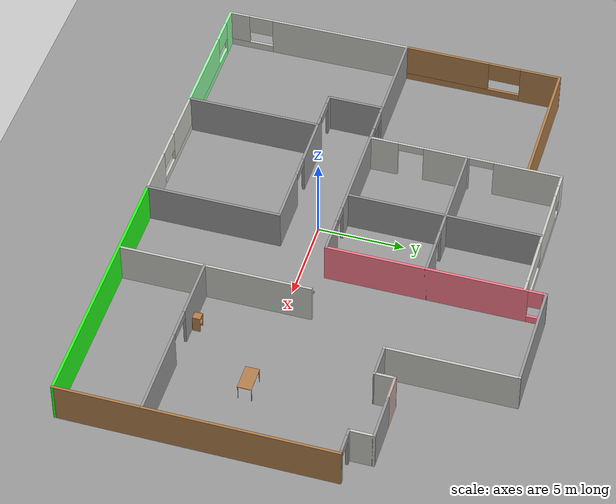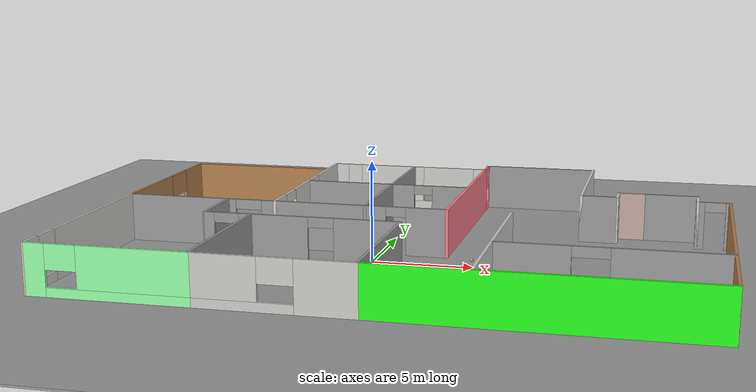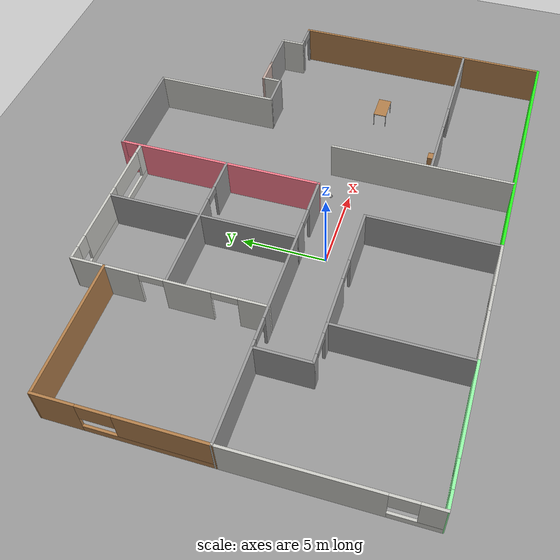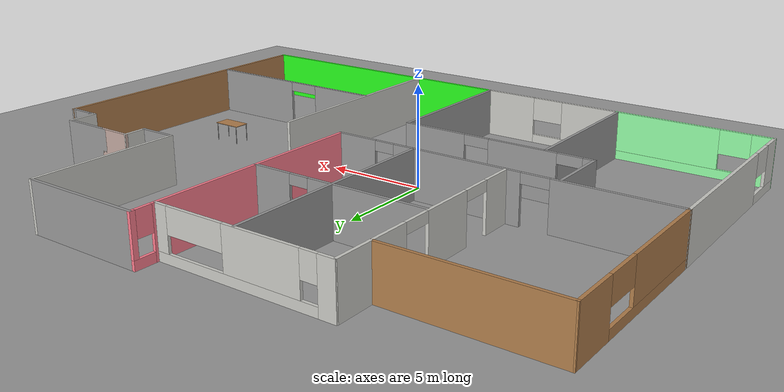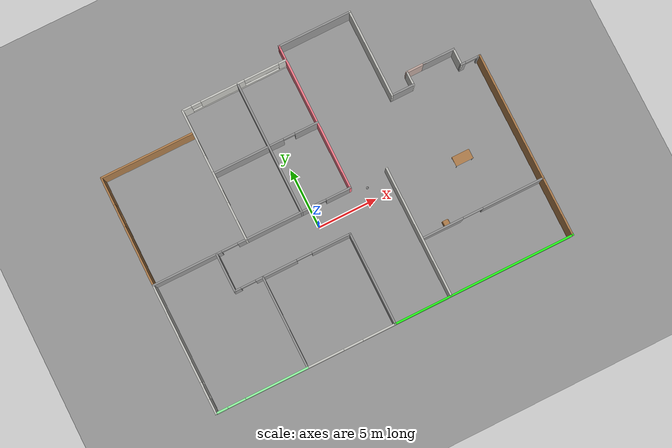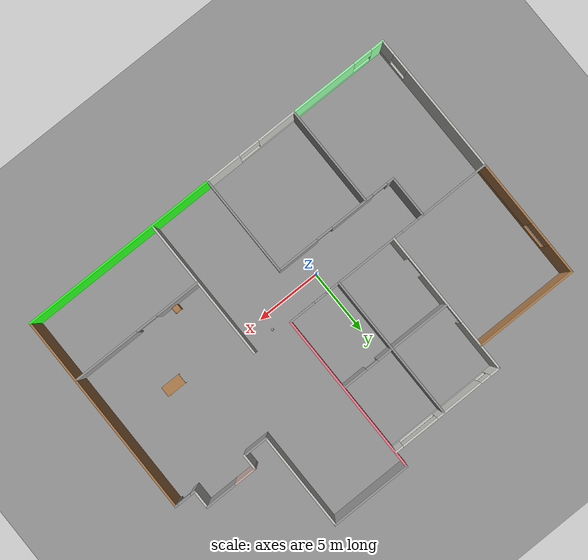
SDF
<sdf version="1.6">
 <world name="default">
  <model name="ground_plane">
   <static>1</static>
   <link name="link">
    <collision name="collision">
     <geometry><plane><normal>0 0 1</normal><size>100 100</size></plane></geometry>
     <surface>
      <contact><collide_bitmask>65535</collide_bitmask></contact>
      <friction><ode><mu>100</mu><mu2>50</mu2></ode></friction>
     </surface>
    </collision>
    <visual name="visual">
     <cast_shadows>0</cast_shadows>
     <geometry><plane><normal>0 0 1</normal><size>100 100</size></plane></geometry>
     <material>
      <script><uri>file://media/materials/scripts/gazebo.material</uri><name>Gazebo/Grey</name></script>
     </material>
    </visual>
   </link>
  </model>
  <model name="ground_plane_0">
   <static>1</static>
   <link name="link">
    <collision name="collision">
     <geometry><plane><normal>0 0 1</normal><size>100 100</size></plane></geometry>
     <surface>
      <contact><collide_bitmask>65535</collide_bitmask></contact>
      <friction><ode><mu>100</mu><mu2>50</mu2></ode></friction>
     </surface>
    </collision>
    <visual name="visual">
     <cast_shadows>0</cast_shadows>
     <geometry><plane><normal>0 0 1</normal><size>100 100</size></plane></geometry>
     <material>
      <script><uri>file://media/materials/scripts/gazebo.material</uri><name>Gazebo/Grey</name></script>
     </material>
    </visual>
   </link>
   <pose>0.029659 0.113725 0 0 -0 0</pose>
  </model>
  <model name="myhome">
   <pose>1.8142 2.19127 0 0 -0 0</pose>
   <link name="Wall_0">
    <collision name="Wall_0_Collision">
     <geometry><box><size>2.75 0.15 2.5</size></box></geometry>
     <pose>0 0 1.25 0 -0 0</pose>
    </collision>
    <visual name="Wall_0_Visual">
     <pose>0 0 1.25 0 -0 0</pose>
     <geometry><box><size>2.75 0.15 2.5</size></box></geometry>
     <material>
      <script><uri>file://media/materials/scripts/gazebo.material</uri><name>Gazebo/Grey</name></script>
      <ambient>1 1 1 1</ambient>
     </material>
     <meta><layer>0</layer></meta>
    </visual>
    <pose>12.3251 5.36908 0 0 -0 0</pose>
   </link>
   <link name="Wall_1">
    <collision name="Wall_1_Collision">
     <geometry><box><size>1.5 0.15 2.5</size></box></geometry>
     <pose>0 0 1.25 0 -0 0</pose>
    </collision>
    <visual name="Wall_1_Visual">
     <pose>0 0 1.25 0 -0 0</pose>
     <geometry><box><size>1.5 0.15 2.5</size></box></geometry>
     <material>
      <script><uri>file://media/materials/scripts/gazebo.material</uri><name>Gazebo/CeilingTiled</name></script>
      <ambient>1 1 1 1</ambient>
     </material>
     <meta><layer>0</layer></meta>
    </visual>
    <pose>13.6251 4.69408 0 0 0 -1.5708</pose>
   </link>
   <link name="Wall_10">
    <collision name="Wall_10_Collision">
     <geometry><box><size>7.5 0.15 2.5</size></box></geometry>
     <pose>0 0 1.25 0 -0 0</pose>
    </collision>
    <visual name="Wall_10_Visual">
     <pose>0 0 1.25 0 -0 0</pose>
     <geometry><box><size>7.5 0.15 2.5</size></box></geometry>
     <material>
      <script><uri>file://media/materials/scripts/gazebo.material</uri><name>Gazebo/CeilingTiled</name></script>
      <ambient>1 1 1 1</ambient>
     </material>
     <meta><layer>0</layer></meta>
    </visual>
    <pose>7.72467 7.93597 0 0 0 -1.5708</pose>
   </link>
   <link name="Wall_11">
    <collision name="Wall_11_Collision">
     <geometry><box><size>2 0.15 2.5</size></box></geometry>
     <pose>0 0 1.25 0 -0 0</pose>
    </collision>
    <visual name="Wall_11_Visual">
     <pose>0 0 1.25 0 -0 0</pose>
     <geometry><box><size>2 0.15 2.5</size></box></geometry>
     <material>
      <script><uri>file://media/materials/scripts/gazebo.material</uri><name>Gazebo/Grey</name></script>
      <ambient>1 1 1 1</ambient>
     </material>
     <meta><layer>0</layer></meta>
    </visual>
    <pose>8.64967 4.26097 0 0 -0 0</pose>
   </link>
   <link name="Wall_12">
    <collision name="Wall_12_Collision">
     <geometry><box><size>1.25811 0.15 2.5</size></box></geometry>
     <pose>0 0 1.25 0 -0 0</pose>
    </collision>
    <visual name="Wall_12_Visual">
     <pose>0 0 1.25 0 -0 0</pose>
     <geometry><box><size>1.25811 0.15 2.5</size></box></geometry>
     <material>
      <script><uri>file://media/materials/scripts/gazebo.material</uri><name>Gazebo/CeilingTiled</name></script>
      <ambient>1 1 1 1</ambient>
     </material>
     <meta><layer>0</layer></meta>
    </visual>
    <pose>9.5749 4.81502 0 0 -0 1.57038</pose>
   </link>
   <link name="Wall_13">
    <collision name="Wall_13_Collision">
     <geometry><box><size>1.75 0.15 2.5</size></box></geometry>
     <pose>0 0 1.25 0 -0 0</pose>
    </collision>
    <visual name="Wall_13_Visual">
     <pose>0 0 1.25 0 -0 0</pose>
     <geometry><box><size>1.75 0.15 2.5</size></box></geometry>
     <material>
      <script><uri>file://media/materials/scripts/gazebo.material</uri><name>Gazebo/Grey</name></script>
      <ambient>0.760784 0.662745 0.627451 1</ambient>
     </material>
     <meta><layer>0</layer></meta>
    </visual>
    <pose>10.3751 5.36908 0 0 -0 0</pose>
   </link>
   <link name="Wall_17">
    <pose>-6.8051 -0.738977 0 0 0 -3.14159</pose>
    <visual name="Wall_17_Visual_0">
     <pose>-7.4168 0 1.25 0 -0 0</pose>
     <geometry><box><size>2.15686 0.15 2.5</size></box></geometry>
     <material>
      <script><uri>file://media/materials/scripts/gazebo.material</uri><name>Gazebo/Grey</name></script>
      <ambient>1 1 1 1</ambient>
     </material>
     <meta><layer>0</layer></meta>
    </visual>
    <collision name="Wall_17_Collision_0">
     <geometry><box><size>2.15686 0.15 2.5</size></box></geometry>
     <pose>-7.4168 0 1.25 0 -0 0</pose>
    </collision>
    <visual name="Wall_17_Visual_1">
     <pose>-2.04089 0 1.25 0 -0 0</pose>
     <geometry><box><size>6.55161 0.15 2.5</size></box></geometry>
     <material>
      <script><uri>file://media/materials/scripts/gazebo.material</uri><name>Gazebo/Grey</name></script>
      <ambient>1 1 1 1</ambient>
     </material>
     <meta><layer>0</layer></meta>
    </visual>
    <collision name="Wall_17_Collision_1">
     <geometry><box><size>6.55161 0.15 2.5</size></box></geometry>
     <pose>-2.04089 0 1.25 0 -0 0</pose>
    </collision>
    <visual name="Wall_17_Visual_2">
     <pose>5.54911 0 1.25 0 -0 0</pose>
     <geometry><box><size>5.89224 0.15 2.5</size></box></geometry>
     <material>
      <script><uri>file://media/materials/scripts/gazebo.material</uri><name>Gazebo/Grey</name></script>
      <ambient>1 1 1 1</ambient>
     </material>
     <meta><layer>0</layer></meta>
    </visual>
    <collision name="Wall_17_Collision_2">
     <geometry><box><size>5.89224 0.15 2.5</size></box></geometry>
     <pose>5.54911 0 1.25 0 -0 0</pose>
    </collision>
    <visual name="Wall_17_Visual_3">
     <pose>-5.82753 0 2.25 0 -0 0</pose>
     <geometry><box><size>1.02167 0.15 0.5</size></box></geometry>
     <material>
      <script><uri>file://media/materials/scripts/gazebo.material</uri><name>Gazebo/Grey</name></script>
      <ambient>1 1 1 1</ambient>
     </material>
     <meta><layer>0</layer></meta>
    </visual>
    <collision name="Wall_17_Collision_3">
     <geometry><box><size>1.02167 0.15 0.5</size></box></geometry>
     <pose>-5.82753 0 2.25 0 -0 0</pose>
    </collision>
    <visual name="Wall_17_Visual_4">
     <pose>1.91895 0 2.25 0 -0 0</pose>
     <geometry><box><size>1.36808 0.15 0.5</size></box></geometry>
     <material>
      <script><uri>file://media/materials/scripts/gazebo.material</uri><name>Gazebo/Grey</name></script>
      <ambient>1 1 1 1</ambient>
     </material>
     <meta><layer>0</layer></meta>
    </visual>
    <collision name="Wall_17_Collision_4">
     <geometry><box><size>1.36808 0.15 0.5</size></box></geometry>
     <pose>1.91895 0 2.25 0 -0 0</pose>
    </collision>
   </link>
   <link name="Wall_2">
    <pose>14.4251 4.01908 0 0 -0 0</pose>
    <visual name="Wall_2_Visual_0">
     <pose>-0.659805 0 1.25 0 -0 0</pose>
     <geometry><box><size>0.43039 0.15 2.5</size></box></geometry>
     <material>
      <script><uri>file://media/materials/scripts/gazebo.material</uri><name>Gazebo/Grey</name></script>
      <ambient>1 1 1 1</ambient>
     </material>
     <meta><layer>0</layer></meta>
    </visual>
    <collision name="Wall_2_Collision_0">
     <geometry><box><size>0.43039 0.15 2.5</size></box></geometry>
     <pose>-0.659805 0 1.25 0 -0 0</pose>
    </collision>
    <visual name="Wall_2_Visual_1">
     <pose>0.733934 0 1.25 0 -0 0</pose>
     <geometry><box><size>0.282132 0.15 2.5</size></box></geometry>
     <material>
      <script><uri>file://media/materials/scripts/gazebo.material</uri><name>Gazebo/Grey</name></script>
      <ambient>1 1 1 1</ambient>
     </material>
     <meta><layer>0</layer></meta>
    </visual>
    <collision name="Wall_2_Collision_1">
     <geometry><box><size>0.282132 0.15 2.5</size></box></geometry>
     <pose>0.733934 0 1.25 0 -0 0</pose>
    </collision>
    <visual name="Wall_2_Visual_2">
     <pose>0.074129 0 2.25 0 -0 0</pose>
     <geometry><box><size>1.03748 0.15 0.5</size></box></geometry>
     <material>
      <script><uri>file://media/materials/scripts/gazebo.material</uri><name>Gazebo/Grey</name></script>
      <ambient>1 1 1 1</ambient>
     </material>
     <meta><layer>0</layer></meta>
    </visual>
    <collision name="Wall_2_Collision_2">
     <geometry><box><size>1.03748 0.15 0.5</size></box></geometry>
     <pose>0.074129 0 2.25 0 -0 0</pose>
    </collision>
   </link>
   <link name="Wall_20">
    <pose>-11.329 -11.6109 0 0 -0 0</pose>
    <visual name="Wall_20_Visual_0">
     <pose>-3.40478 0 1.25 0 -0 0</pose>
     <geometry><box><size>1.08011 0.15 2.5</size></box></geometry>
     <material>
      <script><uri>file://media/materials/scripts/gazebo.material</uri><name>Gazebo/Grey</name></script>
      <ambient>0.584314 1 0.654902 1</ambient>
     </material>
     <meta><layer>0</layer></meta>
    </visual>
    <collision name="Wall_20_Collision_0">
     <geometry><box><size>1.08011 0.15 2.5</size></box></geometry>
     <pose>-3.40478 0 1.25 0 -0 0</pose>
    </collision>
    <visual name="Wall_20_Visual_1">
     <pose>0.540053 0 0.25 0 -0 0</pose>
     <geometry><box><size>6.80957 0.15 0.5</size></box></geometry>
     <material>
      <script><uri>file://media/materials/scripts/gazebo.material</uri><name>Gazebo/Grey</name></script>
      <ambient>0.584314 1 0.654902 1</ambient>
     </material>
     <meta><layer>0</layer></meta>
    </visual>
    <collision name="Wall_20_Collision_1">
     <geometry><box><size>6.80957 0.15 0.5</size></box></geometry>
     <pose>0.540053 0 0.25 0 -0 0</pose>
    </collision>
    <visual name="Wall_20_Visual_2">
     <pose>1.29073 0 1.5 0 -0 0</pose>
     <geometry><box><size>5.30822 0.15 2</size></box></geometry>
     <material>
      <script><uri>file://media/materials/scripts/gazebo.material</uri><name>Gazebo/Grey</name></script>
      <ambient>0.584314 1 0.654902 1</ambient>
     </material>
     <meta><layer>0</layer></meta>
    </visual>
    <collision name="Wall_20_Collision_2">
     <geometry><box><size>5.30822 0.15 2</size></box></geometry>
     <pose>1.29073 0 1.5 0 -0 0</pose>
    </collision>
    <visual name="Wall_20_Visual_3">
     <pose>-2.11406 0 1.9 0 -0 0</pose>
     <geometry><box><size>1.50135 0.15 1.2</size></box></geometry>
     <material>
      <script><uri>file://media/materials/scripts/gazebo.material</uri><name>Gazebo/Grey</name></script>
      <ambient>0.584314 1 0.654902 1</ambient>
     </material>
     <meta><layer>0</layer></meta>
    </visual>
    <collision name="Wall_20_Collision_3">
     <geometry><box><size>1.50135 0.15 1.2</size></box></geometry>
     <pose>-2.11406 0 1.9 0 -0 0</pose>
    </collision>
   </link>
   <link name="Wall_21">
    <collision name="Wall_21_Collision">
     <geometry><box><size>7.75 0.15 2.5</size></box></geometry>
     <pose>0 0 1.25 0 -0 0</pose>
    </collision>
    <visual name="Wall_21_Visual">
     <pose>0 0 1.25 0 -0 0</pose>
     <geometry><box><size>7.75 0.15 2.5</size></box></geometry>
     <material>
      <script><uri>file://media/materials/scripts/gazebo.material</uri><name>Gazebo/Grey</name></script>
      <ambient>1 1 1 1</ambient>
     </material>
     <meta><layer>0</layer></meta>
    </visual>
    <pose>-7.45919 -7.73959 0 0 -0 1.5708</pose>
   </link>
   <link name="Wall_23">
    <collision name="Wall_23_Collision">
     <geometry><box><size>7.84924 0.15 2.5</size></box></geometry>
     <pose>0 0 1.25 0 -0 0</pose>
    </collision>
    <visual name="Wall_23_Visual">
     <pose>0 0 1.25 0 -0 0</pose>
     <geometry><box><size>7.84924 0.15 2.5</size></box></geometry>
     <material>
      <script><uri>file://media/materials/scripts/gazebo.material</uri><name>Gazebo/Grey</name></script>
      <ambient>1 1 1 1</ambient>
     </material>
     <meta><layer>0</layer></meta>
    </visual>
    <pose>0.005135 -7.76092 0 0 0 -1.5708</pose>
   </link>
   <link name="Wall_24">
    <pose>-3.72703 -11.6109 0 0 -0 3.14159</pose>
    <visual name="Wall_24_Visual_0">
     <pose>-2.39823 0 1.25 0 -0 0</pose>
     <geometry><box><size>2.81787 0.15 2.5</size></box></geometry>
     <material>
      <script><uri>file://media/materials/scripts/gazebo.material</uri><name>Gazebo/CeilingTiled</name></script>
      <ambient>1 1 1 1</ambient>
     </material>
     <meta><layer>0</layer></meta>
    </visual>
    <collision name="Wall_24_Collision_0">
     <geometry><box><size>2.81787 0.15 2.5</size></box></geometry>
     <pose>-2.39823 0 1.25 0 -0 0</pose>
    </collision>
    <visual name="Wall_24_Visual_1">
     <pose>1.40893 0 0.25 0 -0 0</pose>
     <geometry><box><size>4.79646 0.15 0.5</size></box></geometry>
     <material>
      <script><uri>file://media/materials/scripts/gazebo.material</uri><name>Gazebo/CeilingTiled</name></script>
      <ambient>1 1 1 1</ambient>
     </material>
     <meta><layer>0</layer></meta>
    </visual>
    <collision name="Wall_24_Collision_1">
     <geometry><box><size>4.79646 0.15 0.5</size></box></geometry>
     <pose>1.40893 0 0.25 0 -0 0</pose>
    </collision>
    <visual name="Wall_24_Visual_2">
     <pose>2.22974 0 1.5 0 -0 0</pose>
     <geometry><box><size>3.15484 0.15 2</size></box></geometry>
     <material>
      <script><uri>file://media/materials/scripts/gazebo.material</uri><name>Gazebo/CeilingTiled</name></script>
      <ambient>1 1 1 1</ambient>
     </material>
     <meta><layer>0</layer></meta>
    </visual>
    <collision name="Wall_24_Collision_2">
     <geometry><box><size>3.15484 0.15 2</size></box></geometry>
     <pose>2.22974 0 1.5 0 -0 0</pose>
    </collision>
    <visual name="Wall_24_Visual_3">
     <pose>-0.168486 0 1.9 0 -0 0</pose>
     <geometry><box><size>1.64162 0.15 1.2</size></box></geometry>
     <material>
      <script><uri>file://media/materials/scripts/gazebo.material</uri><name>Gazebo/CeilingTiled</name></script>
      <ambient>1 1 1 1</ambient>
     </material>
     <meta><layer>0</layer></meta>
    </visual>
    <collision name="Wall_24_Collision_3">
     <geometry><box><size>1.64162 0.15 1.2</size></box></geometry>
     <pose>-0.168486 0 1.9 0 -0 0</pose>
    </collision>
   </link>
   <link name="Wall_26">
    <collision name="Wall_26_Collision">
     <geometry><box><size>8 0.15 2.5</size></box></geometry>
     <pose>0 0 1.25 0 -0 0</pose>
    </collision>
    <visual name="Wall_26_Visual">
     <pose>0 0 1.25 0 -0 0</pose>
     <geometry><box><size>8 0.15 2.5</size></box></geometry>
     <material>
      <script><uri>file://media/materials/scripts/gazebo.material</uri><name>Gazebo/Wood</name></script>
      <ambient>1 1 1 1</ambient>
     </material>
     <meta><layer>0</layer></meta>
    </visual>
    <pose>-11.2739 8.48908 0 0 -0 0</pose>
   </link>
   <link name="Wall_29">
    <pose>-7.32018 4.81097 0 0 0 -1.5708</pose>
    <visual name="Wall_29_Visual_0">
     <pose>-3.65679 0 1.25 0 -0 0</pose>
     <geometry><box><size>3.93643 0.15 2.5</size></box></geometry>
     <material>
      <script><uri>file://media/materials/scripts/gazebo.material</uri><name>Gazebo/CeilingTiled</name></script>
      <ambient>1 1 1 1</ambient>
     </material>
     <meta><layer>0</layer></meta>
    </visual>
    <collision name="Wall_29_Collision_0">
     <geometry><box><size>3.93643 0.15 2.5</size></box></geometry>
     <pose>-3.65679 0 1.25 0 -0 0</pose>
    </collision>
    <visual name="Wall_29_Visual_1">
     <pose>1.0605 0 1.25 0 -0 0</pose>
     <geometry><box><size>2.67803 0.15 2.5</size></box></geometry>
     <material>
      <script><uri>file://media/materials/scripts/gazebo.material</uri><name>Gazebo/CeilingTiled</name></script>
      <ambient>1 1 1 1</ambient>
     </material>
     <meta><layer>0</layer></meta>
    </visual>
    <collision name="Wall_29_Collision_1">
     <geometry><box><size>2.67803 0.15 2.5</size></box></geometry>
     <pose>1.0605 0 1.25 0 -0 0</pose>
    </collision>
    <visual name="Wall_29_Visual_2">
     <pose>4.75554 0 1.25 0 -0 0</pose>
     <geometry><box><size>1.73892 0.15 2.5</size></box></geometry>
     <material>
      <script><uri>file://media/materials/scripts/gazebo.material</uri><name>Gazebo/CeilingTiled</name></script>
      <ambient>1 1 1 1</ambient>
     </material>
     <meta><layer>0</layer></meta>
    </visual>
    <collision name="Wall_29_Collision_2">
     <geometry><box><size>1.73892 0.15 2.5</size></box></geometry>
     <pose>4.75554 0 1.25 0 -0 0</pose>
    </collision>
    <visual name="Wall_29_Visual_3">
     <pose>-0.983543 0 2.25 0 -0 0</pose>
     <geometry><box><size>1.41006 0.15 0.5</size></box></geometry>
     <material>
      <script><uri>file://media/materials/scripts/gazebo.material</uri><name>Gazebo/CeilingTiled</name></script>
      <ambient>1 1 1 1</ambient>
     </material>
     <meta><layer>0</layer></meta>
    </visual>
    <collision name="Wall_29_Collision_3">
     <geometry><box><size>1.41006 0.15 0.5</size></box></geometry>
     <pose>-0.983543 0 2.25 0 -0 0</pose>
    </collision>
    <visual name="Wall_29_Visual_4">
     <pose>3.1428 0 2.25 0 -0 0</pose>
     <geometry><box><size>1.48656 0.15 0.5</size></box></geometry>
     <material>
      <script><uri>file://media/materials/scripts/gazebo.material</uri><name>Gazebo/CeilingTiled</name></script>
      <ambient>1 1 1 1</ambient>
     </material>
     <meta><layer>0</layer></meta>
    </visual>
    <collision name="Wall_29_Collision_4">
     <geometry><box><size>1.48656 0.15 0.5</size></box></geometry>
     <pose>3.1428 0 2.25 0 -0 0</pose>
    </collision>
   </link>
   <link name="Wall_31">
    <pose>-2.79237 4.93708 0 0 -0 0</pose>
    <visual name="Wall_31_Visual_0">
     <pose>-1.50721 0 1.25 0 -0 0</pose>
     <geometry><box><size>5.95058 0.15 2.5</size></box></geometry>
     <material>
      <script><uri>file://media/materials/scripts/gazebo.material</uri><name>Gazebo/Grey</name></script>
      <ambient>1 1 1 1</ambient>
     </material>
     <meta><layer>0</layer></meta>
    </visual>
    <collision name="Wall_31_Collision_0">
     <geometry><box><size>5.95058 0.15 2.5</size></box></geometry>
     <pose>-1.50721 0 1.25 0 -0 0</pose>
    </collision>
    <visual name="Wall_31_Visual_1">
     <pose>3.46585 0 1.25 0 -0 0</pose>
     <geometry><box><size>2.0333 0.15 2.5</size></box></geometry>
     <material>
      <script><uri>file://media/materials/scripts/gazebo.material</uri><name>Gazebo/Grey</name></script>
      <ambient>1 1 1 1</ambient>
     </material>
     <meta><layer>0</layer></meta>
    </visual>
    <collision name="Wall_31_Collision_1">
     <geometry><box><size>2.0333 0.15 2.5</size></box></geometry>
     <pose>3.46585 0 1.25 0 -0 0</pose>
    </collision>
    <visual name="Wall_31_Visual_2">
     <pose>1.95864 0 2.25 0 -0 0</pose>
     <geometry><box><size>0.981113 0.15 0.5</size></box></geometry>
     <material>
      <script><uri>file://media/materials/scripts/gazebo.material</uri><name>Gazebo/Grey</name></script>
      <ambient>1 1 1 1</ambient>
     </material>
     <meta><layer>0</layer></meta>
    </visual>
    <collision name="Wall_31_Collision_2">
     <geometry><box><size>0.981113 0.15 0.5</size></box></geometry>
     <pose>1.95864 0 2.25 0 -0 0</pose>
    </collision>
   </link>
   <link name="Wall_33">
    <collision name="Wall_33_Collision">
     <geometry><box><size>15.78 0.15 2.5</size></box></geometry>
     <pose>0 0 1.25 0 -0 0</pose>
    </collision>
    <visual name="Wall_33_Visual">
     <pose>0 0 1.25 0 -0 0</pose>
     <geometry><box><size>15.78 0.15 2.5</size></box></geometry>
     <material>
      <script><uri>file://media/materials/scripts/gazebo.material</uri><name>Gazebo/Wood</name></script>
      <ambient>1 1 1 1</ambient>
     </material>
     <meta><layer>0</layer></meta>
    </visual>
    <pose>15.2251 -3.79592 0 0 0 -1.5708</pose>
   </link>
   <link name="Wall_34">
    <collision name="Wall_34_Collision">
     <geometry><box><size>15.3708 0.15 2.5</size></box></geometry>
     <pose>0 0 1.25 0 -0 0</pose>
    </collision>
    <visual name="Wall_34_Visual">
     <pose>0 0 1.25 0 -0 0</pose>
     <geometry><box><size>15.3708 0.15 2.5</size></box></geometry>
     <material>
      <script><uri>file://media/materials/scripts/gazebo.material</uri><name>Gazebo/Grey</name></script>
      <ambient>0.152941 1 0.109804 1</ambient>
     </material>
     <meta><layer>0</layer></meta>
    </visual>
    <pose>7.61514 -11.6109 0 0 -0 3.14159</pose>
   </link>
   <link name="Wall_36">
    <pose>-4.91986 -3.91092 0 0 -0 0</pose>
    <visual name="Wall_36_Visual_0">
     <pose>-4.69801 0 1.25 0 -0 0</pose>
     <geometry><box><size>0.603972 0.15 2.5</size></box></geometry>
     <material>
      <script><uri>file://media/materials/scripts/gazebo.material</uri><name>Gazebo/Grey</name></script>
      <ambient>1 1 1 1</ambient>
     </material>
     <meta><layer>0</layer></meta>
    </visual>
    <collision name="Wall_36_Collision_0">
     <geometry><box><size>0.603972 0.15 2.5</size></box></geometry>
     <pose>-4.69801 0 1.25 0 -0 0</pose>
    </collision>
    <visual name="Wall_36_Visual_1">
     <pose>-1.39103 0 1.25 0 -0 0</pose>
     <geometry><box><size>3.50788 0.15 2.5</size></box></geometry>
     <material>
      <script><uri>file://media/materials/scripts/gazebo.material</uri><name>Gazebo/Grey</name></script>
      <ambient>1 1 1 1</ambient>
     </material>
     <meta><layer>0</layer></meta>
    </visual>
    <collision name="Wall_36_Collision_1">
     <geometry><box><size>3.50788 0.15 2.5</size></box></geometry>
     <pose>-1.39103 0 1.25 0 -0 0</pose>
    </collision>
    <visual name="Wall_36_Visual_2">
     <pose>3.32649 0 1.25 0 -0 0</pose>
     <geometry><box><size>3.34702 0.15 2.5</size></box></geometry>
     <material>
      <script><uri>file://media/materials/scripts/gazebo.material</uri><name>Gazebo/Grey</name></script>
      <ambient>1 1 1 1</ambient>
     </material>
     <meta><layer>0</layer></meta>
    </visual>
    <collision name="Wall_36_Collision_2">
     <geometry><box><size>3.34702 0.15 2.5</size></box></geometry>
     <pose>3.32649 0 1.25 0 -0 0</pose>
    </collision>
    <visual name="Wall_36_Visual_3">
     <pose>-3.7705 0 2.25 0 -0 0</pose>
     <geometry><box><size>1.25106 0.15 0.5</size></box></geometry>
     <material>
      <script><uri>file://media/materials/scripts/gazebo.material</uri><name>Gazebo/Grey</name></script>
      <ambient>1 1 1 1</ambient>
     </material>
     <meta><layer>0</layer></meta>
    </visual>
    <collision name="Wall_36_Collision_3">
     <geometry><box><size>1.25106 0.15 0.5</size></box></geometry>
     <pose>-3.7705 0 2.25 0 -0 0</pose>
    </collision>
    <visual name="Wall_36_Visual_4">
     <pose>1.00795 0 2.25 0 -0 0</pose>
     <geometry><box><size>1.29007 0.15 0.5</size></box></geometry>
     <material>
      <script><uri>file://media/materials/scripts/gazebo.material</uri><name>Gazebo/Grey</name></script>
      <ambient>1 1 1 1</ambient>
     </material>
     <meta><layer>0</layer></meta>
    </visual>
    <collision name="Wall_36_Collision_4">
     <geometry><box><size>1.29007 0.15 0.5</size></box></geometry>
     <pose>1.00795 0 2.25 0 -0 0</pose>
    </collision>
   </link>
   <link name="Wall_38">
    <pose>-15.2121 3.87502 0 0 0 -1.57366</pose>
    <visual name="Wall_38_Visual_0">
     <pose>-3.48833 0 1.25 0 -0 0</pose>
     <geometry><box><size>2.40148 0.15 2.5</size></box></geometry>
     <material>
      <script><uri>file://media/materials/scripts/gazebo.material</uri><name>Gazebo/Wood</name></script>
      <ambient>1 1 1 1</ambient>
     </material>
     <meta><layer>0</layer></meta>
    </visual>
    <collision name="Wall_38_Collision_0">
     <geometry><box><size>2.40148 0.15 2.5</size></box></geometry>
     <pose>-3.48833 0 1.25 0 -0 0</pose>
    </collision>
    <visual name="Wall_38_Visual_1">
     <pose>1.20074 0 0.25 0 -0 0</pose>
     <geometry><box><size>6.97666 0.15 0.5</size></box></geometry>
     <material>
      <script><uri>file://media/materials/scripts/gazebo.material</uri><name>Gazebo/Wood</name></script>
      <ambient>1 1 1 1</ambient>
     </material>
     <meta><layer>0</layer></meta>
    </visual>
    <collision name="Wall_38_Collision_1">
     <geometry><box><size>6.97666 0.15 0.5</size></box></geometry>
     <pose>1.20074 0 0.25 0 -0 0</pose>
    </collision>
    <visual name="Wall_38_Visual_2">
     <pose>2.14428 0 1.5 0 -0 0</pose>
     <geometry><box><size>5.08958 0.15 2</size></box></geometry>
     <material>
      <script><uri>file://media/materials/scripts/gazebo.material</uri><name>Gazebo/Wood</name></script>
      <ambient>1 1 1 1</ambient>
     </material>
     <meta><layer>0</layer></meta>
    </visual>
    <collision name="Wall_38_Collision_2">
     <geometry><box><size>5.08958 0.15 2</size></box></geometry>
     <pose>2.14428 0 1.5 0 -0 0</pose>
    </collision>
    <visual name="Wall_38_Visual_3">
     <pose>-1.34405 0 1.9 0 -0 0</pose>
     <geometry><box><size>1.88709 0.15 1.2</size></box></geometry>
     <material>
      <script><uri>file://media/materials/scripts/gazebo.material</uri><name>Gazebo/Wood</name></script>
      <ambient>1 1 1 1</ambient>
     </material>
     <meta><layer>0</layer></meta>
    </visual>
    <collision name="Wall_38_Collision_3">
     <geometry><box><size>1.88709 0.15 1.2</size></box></geometry>
     <pose>-1.34405 0 1.9 0 -0 0</pose>
    </collision>
   </link>
   <link name="Wall_40">
    <collision name="Wall_40_Collision">
     <geometry><box><size>3.25 0.15 2.5</size></box></geometry>
     <pose>0 0 1.25 0 -0 0</pose>
    </collision>
    <visual name="Wall_40_Visual">
     <pose>0 0 1.25 0 -0 0</pose>
     <geometry><box><size>3.25 0.15 2.5</size></box></geometry>
     <material>
      <script><uri>file://media/materials/scripts/gazebo.material</uri><name>Gazebo/Grey</name></script>
      <ambient>1 1 1 1</ambient>
     </material>
     <meta><layer>0</layer></meta>
    </visual>
    <pose>-9.84487 -2.36092 0 0 -0 1.5708</pose>
   </link>
   <link name="Wall_42">
    <pose>-15.2121 -6.17498 0 0 0 -1.56836</pose>
    <visual name="Wall_42_Visual_0">
     <pose>-1.35271 0 1.25 0 -0 0</pose>
     <geometry><box><size>8.31651 0.15 2.5</size></box></geometry>
     <material>
      <script><uri>file://media/materials/scripts/gazebo.material</uri><name>Gazebo/CeilingTiled</name></script>
      <ambient>0.584314 1 0.654902 1</ambient>
     </material>
     <meta><layer>0</layer></meta>
    </visual>
    <collision name="Wall_42_Collision_0">
     <geometry><box><size>8.31651 0.15 2.5</size></box></geometry>
     <pose>-1.35271 0 1.25 0 -0 0</pose>
    </collision>
    <visual name="Wall_42_Visual_1">
     <pose>4.15825 0 0.25 0 -0 0</pose>
     <geometry><box><size>2.70542 0.15 0.5</size></box></geometry>
     <material>
      <script><uri>file://media/materials/scripts/gazebo.material</uri><name>Gazebo/CeilingTiled</name></script>
      <ambient>0.584314 1 0.654902 1</ambient>
     </material>
     <meta><layer>0</layer></meta>
    </visual>
    <collision name="Wall_42_Collision_1">
     <geometry><box><size>2.70542 0.15 0.5</size></box></geometry>
     <pose>4.15825 0 0.25 0 -0 0</pose>
    </collision>
    <visual name="Wall_42_Visual_2">
     <pose>4.87369 0 1.5 0 -0 0</pose>
     <geometry><box><size>1.27454 0.15 2</size></box></geometry>
     <material>
      <script><uri>file://media/materials/scripts/gazebo.material</uri><name>Gazebo/CeilingTiled</name></script>
      <ambient>0.584314 1 0.654902 1</ambient>
     </material>
     <meta><layer>0</layer></meta>
    </visual>
    <collision name="Wall_42_Collision_2">
     <geometry><box><size>1.27454 0.15 2</size></box></geometry>
     <pose>4.87369 0 1.5 0 -0 0</pose>
    </collision>
    <visual name="Wall_42_Visual_3">
     <pose>3.52098 0 1.9 0 -0 0</pose>
     <geometry><box><size>1.43087 0.15 1.2</size></box></geometry>
     <material>
      <script><uri>file://media/materials/scripts/gazebo.material</uri><name>Gazebo/CeilingTiled</name></script>
      <ambient>0.584314 1 0.654902 1</ambient>
     </material>
     <meta><layer>0</layer></meta>
    </visual>
    <collision name="Wall_42_Collision_3">
     <geometry><box><size>1.43087 0.15 1.2</size></box></geometry>
     <pose>3.52098 0 1.9 0 -0 0</pose>
    </collision>
   </link>
   <link name="Wall_44">
    <collision name="Wall_44_Collision">
     <geometry><box><size>11 0.15 2.5</size></box></geometry>
     <pose>0 0 1.25 0 -0 0</pose>
    </collision>
    <visual name="Wall_44_Visual">
     <pose>0 0 1.25 0 -0 0</pose>
     <geometry><box><size>11 0.15 2.5</size></box></geometry>
     <material>
      <script><uri>file://media/materials/scripts/gazebo.material</uri><name>Gazebo/CeilingTiled</name></script>
      <ambient>1 1 1 1</ambient>
     </material>
     <meta><layer>0</layer></meta>
    </visual>
    <pose>4.79029 -6.0863 0 0 0 -1.5708</pose>
   </link>
   <link name="Wall_46">
    <pose>10.0331 -6.69886 0 0 -0 0</pose>
    <visual name="Wall_46_Visual_0">
     <pose>-3.48563 0 1.25 0 -0 0</pose>
     <geometry><box><size>3.52875 0.15 2.5</size></box></geometry>
     <material>
      <script><uri>file://media/materials/scripts/gazebo.material</uri><name>Gazebo/Grey</name></script>
      <ambient>1 1 1 1</ambient>
     </material>
     <meta><layer>0</layer></meta>
    </visual>
    <collision name="Wall_46_Collision_0">
     <geometry><box><size>3.52875 0.15 2.5</size></box></geometry>
     <pose>-3.48563 0 1.25 0 -0 0</pose>
    </collision>
    <visual name="Wall_46_Visual_1">
     <pose>2.61531 0 1.25 0 -0 0</pose>
     <geometry><box><size>5.26939 0.15 2.5</size></box></geometry>
     <material>
      <script><uri>file://media/materials/scripts/gazebo.material</uri><name>Gazebo/Grey</name></script>
      <ambient>1 1 1 1</ambient>
     </material>
     <meta><layer>0</layer></meta>
    </visual>
    <collision name="Wall_46_Collision_1">
     <geometry><box><size>5.26939 0.15 2.5</size></box></geometry>
     <pose>2.61531 0 1.25 0 -0 0</pose>
    </collision>
    <visual name="Wall_46_Visual_2">
     <pose>-0.87032 0 2.25 0 -0 0</pose>
     <geometry><box><size>1.70186 0.15 0.5</size></box></geometry>
     <material>
      <script><uri>file://media/materials/scripts/gazebo.material</uri><name>Gazebo/Grey</name></script>
      <ambient>1 1 1 1</ambient>
     </material>
     <meta><layer>0</layer></meta>
    </visual>
    <collision name="Wall_46_Collision_2">
     <geometry><box><size>1.70186 0.15 0.5</size></box></geometry>
     <pose>-0.87032 0 2.25 0 -0 0</pose>
    </collision>
   </link>
   <link name="Wall_48">
    <collision name="Wall_48_Collision">
     <geometry><box><size>11.25 0.15 2.5</size></box></geometry>
     <pose>0 0 1.25 0 -0 0</pose>
    </collision>
    <visual name="Wall_48_Visual">
     <pose>0 0 1.25 0 -0 0</pose>
     <geometry><box><size>11.25 0.15 2.5</size></box></geometry>
     <material>
      <script><uri>file://media/materials/scripts/gazebo.material</uri><name>Gazebo/Grey</name></script>
      <ambient>1 1 1 1</ambient>
     </material>
     <meta><layer>0</layer></meta>
    </visual>
    <pose>-2.57685 4.80651 0 0 -0 1.5708</pose>
   </link>
   <link name="Wall_50">
    <pose>-2.86835 10.4186 0 0 -0 0</pose>
    <visual name="Wall_50_Visual_0">
     <pose>-4.09185 0 1.25 0 -0 0</pose>
     <geometry><box><size>0.816307 0.15 2.5</size></box></geometry>
     <material>
      <script><uri>file://media/materials/scripts/gazebo.material</uri><name>Gazebo/CeilingTiled</name></script>
      <ambient>1 1 1 1</ambient>
     </material>
     <meta><layer>0</layer></meta>
    </visual>
    <collision name="Wall_50_Collision_0">
     <geometry><box><size>0.816307 0.15 2.5</size></box></geometry>
     <pose>-4.09185 0 1.25 0 -0 0</pose>
    </collision>
    <visual name="Wall_50_Visual_1">
     <pose>0.408153 0 0.25 0 -0 0</pose>
     <geometry><box><size>8.18369 0.15 0.5</size></box></geometry>
     <material>
      <script><uri>file://media/materials/scripts/gazebo.material</uri><name>Gazebo/CeilingTiled</name></script>
      <ambient>1 1 1 1</ambient>
     </material>
     <meta><layer>0</layer></meta>
    </visual>
    <collision name="Wall_50_Collision_1">
     <geometry><box><size>8.18369 0.15 0.5</size></box></geometry>
     <pose>0.408153 0 0.25 0 -0 0</pose>
    </collision>
    <visual name="Wall_50_Visual_2">
     <pose>-1.0043 0 1.5 0 -0 0</pose>
     <geometry><box><size>3.75878 0.15 2</size></box></geometry>
     <material>
      <script><uri>file://media/materials/scripts/gazebo.material</uri><name>Gazebo/CeilingTiled</name></script>
      <ambient>1 1 1 1</ambient>
     </material>
     <meta><layer>0</layer></meta>
    </visual>
    <collision name="Wall_50_Collision_2">
     <geometry><box><size>3.75878 0.15 2</size></box></geometry>
     <pose>-1.0043 0 1.5 0 -0 0</pose>
    </collision>
    <visual name="Wall_50_Visual_3">
     <pose>4.1571 0 1.5 0 -0 0</pose>
     <geometry><box><size>0.685794 0.15 2</size></box></geometry>
     <material>
      <script><uri>file://media/materials/scripts/gazebo.material</uri><name>Gazebo/CeilingTiled</name></script>
      <ambient>1 1 1 1</ambient>
     </material>
     <meta><layer>0</layer></meta>
    </visual>
    <collision name="Wall_50_Collision_3">
     <geometry><box><size>0.685794 0.15 2</size></box></geometry>
     <pose>4.1571 0 1.5 0 -0 0</pose>
    </collision>
    <visual name="Wall_50_Visual_4">
     <pose>-3.28369 0 1.9 0 -0 0</pose>
     <geometry><box><size>0.8 0.15 1.2</size></box></geometry>
     <material>
      <script><uri>file://media/materials/scripts/gazebo.material</uri><name>Gazebo/CeilingTiled</name></script>
      <ambient>1 1 1 1</ambient>
     </material>
     <meta><layer>0</layer></meta>
    </visual>
    <collision name="Wall_50_Collision_4">
     <geometry><box><size>0.8 0.15 1.2</size></box></geometry>
     <pose>-3.28369 0 1.9 0 -0 0</pose>
    </collision>
    <visual name="Wall_50_Visual_5">
     <pose>2.34465 0 1.9 0 -0 0</pose>
     <geometry><box><size>2.93912 0.15 1.2</size></box></geometry>
     <material>
      <script><uri>file://media/materials/scripts/gazebo.material</uri><name>Gazebo/CeilingTiled</name></script>
      <ambient>1 1 1 1</ambient>
     </material>
     <meta><layer>0</layer></meta>
    </visual>
    <collision name="Wall_50_Collision_5">
     <geometry><box><size>2.93912 0.15 1.2</size></box></geometry>
     <pose>2.34465 0 1.9 0 -0 0</pose>
    </collision>
   </link>
   <link name="Wall_8">
    <pose>1.61513 5.43608 0 0 -0 1.5708</pose>
    <visual name="Wall_8_Visual_0">
     <pose>-0.531338 0 1.25 0 -0 0</pose>
     <geometry><box><size>11.4374 0.15 2.5</size></box></geometry>
     <material>
      <script><uri>file://media/materials/scripts/gazebo.material</uri><name>Gazebo/Grey</name></script>
      <ambient>1 0.494118 0.560784 1</ambient>
     </material>
     <meta><layer>0</layer></meta>
    </visual>
    <collision name="Wall_8_Collision_0">
     <geometry><box><size>11.4374 0.15 2.5</size></box></geometry>
     <pose>-0.531338 0 1.25 0 -0 0</pose>
    </collision>
    <visual name="Wall_8_Visual_1">
     <pose>5.71869 0 0.25 0 -0 0</pose>
     <geometry><box><size>1.06268 0.15 0.5</size></box></geometry>
     <material>
      <script><uri>file://media/materials/scripts/gazebo.material</uri><name>Gazebo/Grey</name></script>
      <ambient>1 0.494118 0.560784 1</ambient>
     </material>
     <meta><layer>0</layer></meta>
    </visual>
    <collision name="Wall_8_Collision_1">
     <geometry><box><size>1.06268 0.15 0.5</size></box></geometry>
     <pose>5.71869 0 0.25 0 -0 0</pose>
    </collision>
    <visual name="Wall_8_Visual_2">
     <pose>6.11869 0 1.5 0 -0 0</pose>
     <geometry><box><size>0.262676 0.15 2</size></box></geometry>
     <material>
      <script><uri>file://media/materials/scripts/gazebo.material</uri><name>Gazebo/Grey</name></script>
      <ambient>1 0.494118 0.560784 1</ambient>
     </material>
     <meta><layer>0</layer></meta>
    </visual>
    <collision name="Wall_8_Collision_2">
     <geometry><box><size>0.262676 0.15 2</size></box></geometry>
     <pose>6.11869 0 1.5 0 -0 0</pose>
    </collision>
    <visual name="Wall_8_Visual_3">
     <pose>5.58735 0 1.9 0 -0 0</pose>
     <geometry><box><size>0.8 0.15 1.2</size></box></geometry>
     <material>
      <script><uri>file://media/materials/scripts/gazebo.material</uri><name>Gazebo/Grey</name></script>
      <ambient>1 0.494118 0.560784 1</ambient>
     </material>
     <meta><layer>0</layer></meta>
    </visual>
    <collision name="Wall_8_Collision_3">
     <geometry><box><size>0.8 0.15 1.2</size></box></geometry>
     <pose>5.58735 0 1.9 0 -0 0</pose>
    </collision>
   </link>
   <link name="Wall_9">
    <collision name="Wall_9_Collision">
     <geometry><box><size>6.25953 0.15 2.5</size></box></geometry>
     <pose>0 0 1.25 0 -0 0</pose>
    </collision>
    <visual name="Wall_9_Visual">
     <pose>0 0 1.25 0 -0 0</pose>
     <geometry><box><size>6.25953 0.15 2.5</size></box></geometry>
     <material>
      <script><uri>file://media/materials/scripts/gazebo.material</uri><name>Gazebo/Grey</name></script>
      <ambient>1 1 1 1</ambient>
     </material>
     <meta><layer>0</layer></meta>
    </visual>
    <pose>4.6699 11.611 0 0 0 -1.8e-05</pose>
   </link>
   <static>1</static>
  </model>
  <model name="cabinet_0">
   <static>1</static>
   <link name="cabinet_bottom_plate">
    <inertial>
     <pose>0 0 -1 0 -0 0</pose>
     <inertia><ixx>2.05</ixx><ixy>0</ixy><ixz>0</ixz><iyy>2.05</iyy><iyz>0</iyz><izz>2.05</izz></inertia>
     <mass>25</mass>
    </inertial>
    <collision name="cabinet_bottom_plate_geom">
     <pose>0 0 0.01 0 -0 0</pose>
     <geometry><box><size>0.45 0.45 0.02</size></box></geometry>
    </collision>
    <visual name="cabinet_bottom_plate_geom_visual">
     <pose>0 0 0.01 0 -0 0</pose>
     <geometry><box><size>0.45 0.45 0.02</size></box></geometry>
     <material>
      <script><uri>file://media/materials/scripts/gazebo.material</uri><name>Gazebo/Wood</name></script>
     </material>
    </visual>
    <collision name="cabinet_bottom_plate_geom_cabinet_back_plate">
     <pose>0.235 0 0.51 0 -0 0</pose>
     <geometry><box><size>0.02 0.45 1.02</size></box></geometry>
    </collision>
    <visual name="cabinet_bottom_plate_geom_cabinet_back_plate_visual">
     <pose>0.235 0 0.51 0 -0 0</pose>
     <geometry><box><size>0.02 0.45 1.02</size></box></geometry>
     <material>
      <script><uri>file://media/materials/scripts/gazebo.material</uri><name>Gazebo/Wood</name></script>
     </material>
    </visual>
    <collision name="cabinet_bottom_plate_geom_cabinet_left_plate">
     <pose>0 0.235 0.51 0 -0 0</pose>
     <geometry><box><size>0.45 0.02 1.02</size></box></geometry>
    </collision>
    <visual name="cabinet_bottom_plate_geom_cabinet_left_plate_visual">
     <pose>0 0.235 0.51 0 -0 0</pose>
     <geometry><box><size>0.45 0.02 1.02</size></box></geometry>
     <material>
      <script><uri>file://media/materials/scripts/gazebo.material</uri><name>Gazebo/Wood</name></script>
     </material>
    </visual>
    <collision name="cabinet_bottom_plate_geom_cabinet_middle_plate">
     <pose>0 0 0.51 0 -0 0</pose>
     <geometry><box><size>0.45 0.45 0.02</size></box></geometry>
    </collision>
    <visual name="cabinet_bottom_plate_geom_cabinet_middle_plate_visual">
     <pose>0 0 0.51 0 -0 0</pose>
     <geometry><box><size>0.45 0.45 0.02</size></box></geometry>
     <material>
      <script><uri>file://media/materials/scripts/gazebo.material</uri><name>Gazebo/Wood</name></script>
     </material>
    </visual>
    <collision name="cabinet_bottom_plate_geom_cabinet_right_plate">
     <pose>0 -0.235 0.51 0 -0 0</pose>
     <geometry><box><size>0.45 0.02 1.02</size></box></geometry>
    </collision>
    <visual name="cabinet_bottom_plate_geom_cabinet_right_plate_visual">
     <pose>0 -0.235 0.51 0 -0 0</pose>
     <geometry><box><size>0.45 0.02 1.02</size></box></geometry>
     <material>
      <script><uri>file://media/materials/scripts/gazebo.material</uri><name>Gazebo/Wood</name></script>
     </material>
    </visual>
    <collision name="cabinet_bottom_plate_geom_cabinet_top_plate">
     <pose>0 0 1.01 0 -0 0</pose>
     <geometry><box><size>0.45 0.45 0.02</size></box></geometry>
    </collision>
    <visual name="cabinet_bottom_plate_geom_cabinet_top_plate_visual">
     <pose>0 0 1.01 0 -0 0</pose>
     <geometry><box><size>0.45 0.45 0.02</size></box></geometry>
     <material>
      <script><uri>file://media/materials/scripts/gazebo.material</uri><name>Gazebo/Wood</name></script>
     </material>
    </visual>
   </link>
   <pose>8.98016 -4.1694 -0.00332 0.023967 -0.000785 -1.56021</pose>
  </model>
  <model name="my_ball">
   <link name="link">
    <inertial>
     <mass>1</mass>
     <inertia><ixx>0.1</ixx><ixy>0</ixy><ixz>0</ixz><iyy>0.1</iyy><iyz>0</iyz><izz>0.1</izz></inertia>
    </inertial>
    <visual name="visual">
     <geometry><sphere><radius>0.1</radius></sphere></geometry>
     <material>
      <script><name>Gazebo/Grey</name><uri>file://media/materials/scripts/gazebo.material</uri></script>
      <shader type="pixel"><normal_map>__default__</normal_map></shader>
      <ambient>1 1 1 1</ambient>
      <diffuse>1 1 1 1</diffuse>
      <specular>1 0.01 1 1</specular>
      <emissive>1 1 1 1</emissive>
     </material>
    </visual>
    <collision name="collision">
     <geometry><sphere><radius>0.1</radius></sphere></geometry>
     <surface>
      <friction>
       <ode><mu>1</mu><mu2>1</mu2><fdir1>0 0 0</fdir1><slip1>0</slip1><slip2>0</slip2></ode>
       <torsional>
        <coefficient>1</coefficient>
        <patch_radius>0</patch_radius>
        <surface_radius>0</surface_radius>
        <use_patch_radius>1</use_patch_radius>
        <ode><slip>0</slip></ode>
       </torsional>
      </friction>
      <bounce><restitution_coefficient>0</restitution_coefficient><threshold>1e+06</threshold></bounce>
      <contact>
       <collide_without_contact>0</collide_without_contact>
       <collide_without_contact_bitmask>1</collide_without_contact_bitmask>
       <collide_bitmask>1</collide_bitmask>
       <ode>
        <soft_cfm>0</soft_cfm>
        <soft_erp>0.2</soft_erp>
        <kp>1e+13</kp>
        <kd>1</kd>
        <max_vel>0.01</max_vel>
        <min_depth>0</min_depth>
       </ode>
       <bullet>
        <split_impulse>1</split_impulse>
        <split_impulse_penetration_threshold>-0.01</split_impulse_penetration_threshold>
        <soft_cfm>0</soft_cfm>
        <soft_erp>0.2</soft_erp>
        <kp>1e+13</kp>
        <kd>1</kd>
       </bullet>
      </contact>
     </surface>
    </collision>
   </link>
   <static>0</static>
   <pose>4.75725 1.08226 0.099999 0 -0 0</pose>
  </model>
  <model name="table_clone">
   <static>1</static>
   <link name="link">
    <collision name="surface">
     <pose>0 0 1 0 -0 0</pose>
     <geometry><box><size>1.5 0.8 0.03</size></box></geometry>
     <surface><friction><ode><mu>0.6</mu><mu2>0.6</mu2></ode></friction></surface>
    </collision>
    <visual name="visual1">
     <pose>0 0 1 0 -0 0</pose>
     <geometry><box><size>1.5 0.8 0.03</size></box></geometry>
     <material>
      <script><uri>file://media/materials/scripts/gazebo.material</uri><name>Gazebo/Wood</name></script>
     </material>
    </visual>
    <collision name="front_left_leg">
     <pose>0.68 0.38 0.5 0 -0 0</pose>
     <geometry><cylinder><radius>0.02</radius><length>1</length></cylinder></geometry>
    </collision>
    <visual name="front_left_leg">
     <pose>0.68 0.38 0.5 0 -0 0</pose>
     <geometry><cylinder><radius>0.02</radius><length>1</length></cylinder></geometry>
     <material>
      <script><uri>file://media/materials/scripts/gazebo.material</uri><name>Gazebo/Grey</name></script>
     </material>
    </visual>
    <collision name="front_right_leg">
     <pose>0.68 -0.38 0.5 0 -0 0</pose>
     <geometry><cylinder><radius>0.02</radius><length>1</length></cylinder></geometry>
    </collision>
    <visual name="front_right_leg">
     <pose>0.68 -0.38 0.5 0 -0 0</pose>
     <geometry><cylinder><radius>0.02</radius><length>1</length></cylinder></geometry>
     <material>
      <script><uri>file://media/materials/scripts/gazebo.material</uri><name>Gazebo/Grey</name></script>
     </material>
    </visual>
    <collision name="back_right_leg">
     <pose>-0.68 -0.38 0.5 0 -0 0</pose>
     <geometry><cylinder><radius>0.02</radius><length>1</length></cylinder></geometry>
    </collision>
    <visual name="back_right_leg">
     <pose>-0.68 -0.38 0.5 0 -0 0</pose>
     <geometry><cylinder><radius>0.02</radius><length>1</length></cylinder></geometry>
     <material>
      <script><uri>file://media/materials/scripts/gazebo.material</uri><name>Gazebo/Grey</name></script>
     </material>
    </visual>
    <collision name="back_left_leg">
     <pose>-0.68 0.38 0.5 0 -0 0</pose>
     <geometry><cylinder><radius>0.02</radius><length>1</length></cylinder></geometry>
    </collision>
    <visual name="back_left_leg">
     <pose>-0.68 0.38 0.5 0 -0 0</pose>
     <geometry><cylinder><radius>0.02</radius><length>1</length></cylinder></geometry>
     <material>
      <script><uri>file://media/materials/scripts/gazebo.material</uri><name>Gazebo/Grey</name></script>
     </material>
    </visual>
   </link>
   <pose>12.3958 -0.195265 0 0 -0 0</pose>
  </model>
 </world>
</sdf>
